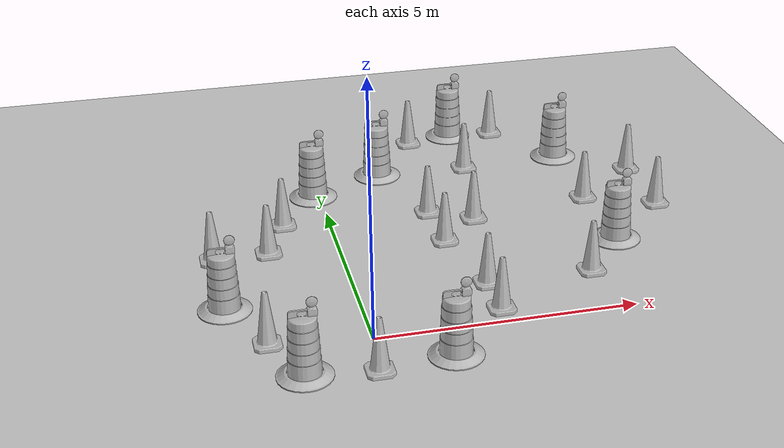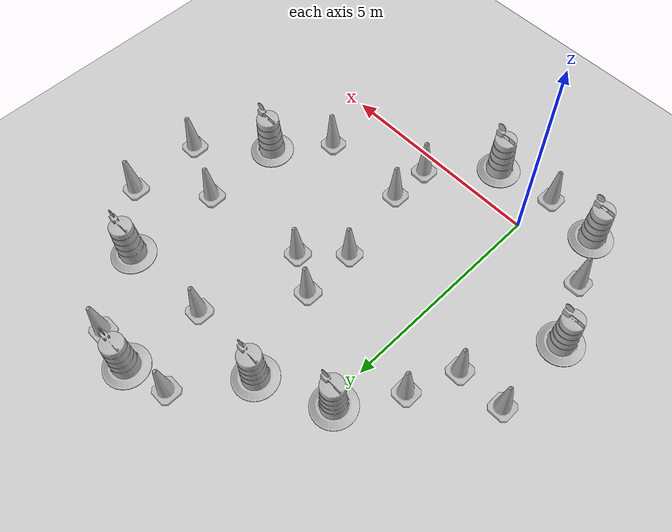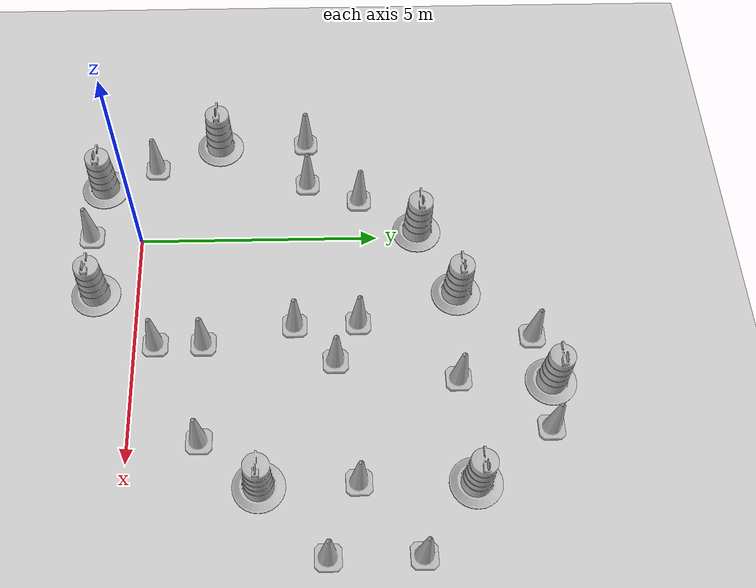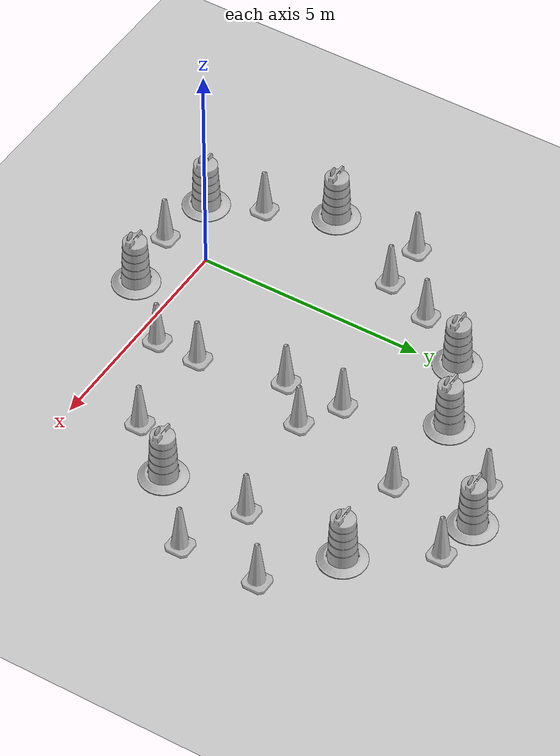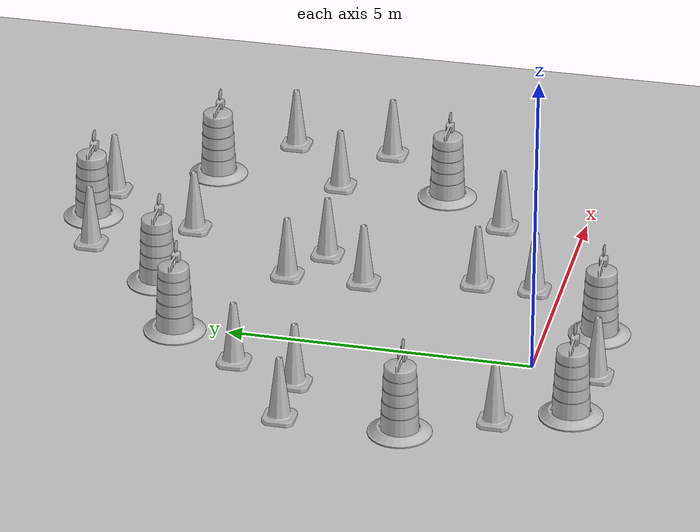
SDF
<sdf version="1.7">
 <world name="default">
  <light name="sun" type="directional">
   <pose>0 0 10 0 -0 0</pose>
   <diffuse>0.8 0.8 0.8 1</diffuse>
   <specular>0.2 0.2 0.2 1</specular>
   <attenuation>
    <range>1000</range>
    <constant>0.9</constant>
    <linear>0.01</linear>
    <quadratic>0.001</quadratic>
   </attenuation>
   <direction>-0.5 0.1 -0.9</direction>
   <spot><inner_angle>0</inner_angle><outer_angle>0</outer_angle><falloff>0</falloff></spot>
  </light>
  <model name="ground_plane">
   <static>1</static>
   <link name="link">
    <collision name="collision">
     <geometry><plane><normal>0 0 1</normal><size>100 100</size></plane></geometry>
     <surface>
      <contact><collide_bitmask>65535</collide_bitmask></contact>
      <friction><ode><mu>100</mu><mu2>50</mu2></ode></friction>
     </surface>
    </collision>
    <visual name="visual">
     <cast_shadows>0</cast_shadows>
     <geometry><plane><normal>0 0 1</normal><size>100 100</size></plane></geometry>
     <material>
      <script><uri>file://media/materials/scripts/gazebo.material</uri><name>Gazebo/Grey</name></script>
     </material>
    </visual>
   </link>
  </model>
  <gravity>0 0 -9.8</gravity>
  <magnetic_field>6e-06 2.3e-05 -4.2e-05</magnetic_field>
  <atmosphere type="adiabatic"/>
  <physics type="ode">
   <max_step_size>0.001</max_step_size>
   <real_time_factor>1</real_time_factor>
   <real_time_update_rate>1000</real_time_update_rate>
  </physics>
  <scene><ambient>0.4 0.4 0.4 1</ambient><background>0.7 0.7 0.7 1</background><shadows>1</shadows></scene>
  <spherical_coordinates>
   <surface_model>EARTH_WGS84</surface_model>
   <latitude_deg>0</latitude_deg>
   <longitude_deg>0</longitude_deg>
   <elevation>0</elevation>
   <heading_deg>0</heading_deg>
  </spherical_coordinates>
  <model name="Construction Barrel">
   <link name="link">
    <inertial>
     <pose>0 0 0.4 0 -0 0</pose>
     <mass>500</mass>
     <inertia><ixx>51.2096</ixx><iyy>51.2096</iyy><izz>25</izz><ixy>0</ixy><ixz>0</ixz><iyz>0</iyz></inertia>
    </inertial>
    <collision name="collision">
     <geometry><mesh><uri>model://construction_barrel/meshes/construction_barrel.dae</uri></mesh></geometry>
    </collision>
    <visual name="visual">
     <geometry><mesh><uri>model://construction_barrel/meshes/construction_barrel.dae</uri></mesh></geometry>
    </visual>
   </link>
   <pose>1.40915 6.57378 -1e-06 1e-06 -9e-06 -4.3e-05</pose>
  </model>
  <model name="Construction Barrel_0">
   <link name="link">
    <inertial>
     <pose>0 0 0.4 0 -0 0</pose>
     <mass>500</mass>
     <inertia><ixx>51.2096</ixx><iyy>51.2096</iyy><izz>25</izz><ixy>0</ixy><ixz>0</ixz><iyz>0</iyz></inertia>
    </inertial>
    <collision name="collision">
     <geometry><mesh><uri>model://construction_barrel/meshes/construction_barrel.dae</uri></mesh></geometry>
    </collision>
    <visual name="visual">
     <geometry><mesh><uri>model://construction_barrel/meshes/construction_barrel.dae</uri></mesh></geometry>
    </visual>
   </link>
   <pose>5.49451 6.60607 -1e-06 1e-06 -9e-06 -4.1e-05</pose>
  </model>
  <model name="Construction Cone">
   <link name="link">
    <collision name="collision">
     <geometry>
      <mesh><scale>10 10 10</scale><uri>model://construction_cone/meshes/construction_cone.dae</uri></mesh>
     </geometry>
    </collision>
    <visual name="visual">
     <geometry>
      <mesh><scale>10 10 10</scale><uri>model://construction_cone/meshes/construction_cone.dae</uri></mesh>
     </geometry>
    </visual>
    <inertial>
     <inertia><ixx>1</ixx><ixy>0</ixy><ixz>0</ixz><iyy>1</iyy><iyz>0</iyz><izz>1</izz></inertia>
     <mass>1</mass>
    </inertial>
   </link>
   <pose>5.458 4.41341 -1e-05 -1e-06 0 0</pose>
  </model>
  <model name="Construction Cone_0">
   <link name="link">
    <collision name="collision">
     <geometry>
      <mesh><scale>10 10 10</scale><uri>model://construction_cone/meshes/construction_cone.dae</uri></mesh>
     </geometry>
    </collision>
    <visual name="visual">
     <geometry>
      <mesh><scale>10 10 10</scale><uri>model://construction_cone/meshes/construction_cone.dae</uri></mesh>
     </geometry>
    </visual>
    <inertial>
     <inertia><ixx>1</ixx><ixy>0</ixy><ixz>0</ixz><iyy>1</iyy><iyz>0</iyz><izz>1</izz></inertia>
     <mass>1</mass>
    </inertial>
   </link>
   <pose>4.58744 1.38523 -8e-06 1e-06 -0 0</pose>
  </model>
  <model name="Construction Cone_1">
   <link name="link">
    <collision name="collision">
     <geometry>
      <mesh><scale>10 10 10</scale><uri>model://construction_cone/meshes/construction_cone.dae</uri></mesh>
     </geometry>
    </collision>
    <visual name="visual">
     <geometry>
      <mesh><scale>10 10 10</scale><uri>model://construction_cone/meshes/construction_cone.dae</uri></mesh>
     </geometry>
    </visual>
    <inertial>
     <inertia><ixx>1</ixx><ixy>0</ixy><ixz>0</ixz><iyy>1</iyy><iyz>0</iyz><izz>1</izz></inertia>
     <mass>1</mass>
    </inertial>
   </link>
   <pose>3.35666 6.45942 -0 0 -0 0</pose>
  </model>
  <model name="Construction Cone_2">
   <link name="link">
    <collision name="collision">
     <geometry>
      <mesh><scale>10 10 10</scale><uri>model://construction_cone/meshes/construction_cone.dae</uri></mesh>
     </geometry>
    </collision>
    <visual name="visual">
     <geometry>
      <mesh><scale>10 10 10</scale><uri>model://construction_cone/meshes/construction_cone.dae</uri></mesh>
     </geometry>
    </visual>
    <inertial>
     <inertia><ixx>1</ixx><ixy>0</ixy><ixz>0</ixz><iyy>1</iyy><iyz>0</iyz><izz>1</izz></inertia>
     <mass>1</mass>
    </inertial>
   </link>
   <pose>-0.951638 4.65665 -0 0 -0 0</pose>
  </model>
  <model name="Construction Barrel_1">
   <link name="link">
    <inertial>
     <pose>0 0 0.4 0 -0 0</pose>
     <mass>500</mass>
     <inertia><ixx>51.2096</ixx><iyy>51.2096</iyy><izz>25</izz><ixy>0</ixy><ixz>0</ixz><iyz>0</iyz></inertia>
    </inertial>
    <collision name="collision">
     <geometry><mesh><uri>model://construction_barrel/meshes/construction_barrel.dae</uri></mesh></geometry>
    </collision>
    <visual name="visual">
     <geometry><mesh><uri>model://construction_barrel/meshes/construction_barrel.dae</uri></mesh></geometry>
    </visual>
   </link>
   <pose>1.3006 -0.863481 -1e-06 5e-06 -3e-06 -0.000551</pose>
  </model>
  <model name="Construction Barrel_2">
   <link name="link">
    <inertial>
     <pose>0 0 0.4 0 -0 0</pose>
     <mass>500</mass>
     <inertia><ixx>51.2096</ixx><iyy>51.2096</iyy><izz>25</izz><ixy>0</ixy><ixz>0</ixz><iyz>0</iyz></inertia>
    </inertial>
    <collision name="collision">
     <geometry><mesh><uri>model://construction_barrel/meshes/construction_barrel.dae</uri></mesh></geometry>
    </collision>
    <visual name="visual">
     <geometry><mesh><uri>model://construction_barrel/meshes/construction_barrel.dae</uri></mesh></geometry>
    </visual>
   </link>
   <pose>-2.47115 1.61275 -1e-06 1e-06 -9e-06 -3.5e-05</pose>
  </model>
  <model name="Construction Cone_3">
   <link name="link">
    <collision name="collision">
     <geometry>
      <mesh><scale>10 10 10</scale><uri>model://construction_cone/meshes/construction_cone.dae</uri></mesh>
     </geometry>
    </collision>
    <visual name="visual">
     <geometry>
      <mesh><scale>10 10 10</scale><uri>model://construction_cone/meshes/construction_cone.dae</uri></mesh>
     </geometry>
    </visual>
    <inertial>
     <inertia><ixx>1</ixx><ixy>0</ixy><ixz>0</ixz><iyy>1</iyy><iyz>0</iyz><izz>1</izz></inertia>
     <mass>1</mass>
    </inertial>
   </link>
   <pose>-1.86584 0.240349 -9e-06 -1e-06 -0 -0</pose>
  </model>
  <model name="Construction Barrel_3">
   <link name="link">
    <inertial>
     <pose>0 0 0.4 0 -0 0</pose>
     <mass>500</mass>
     <inertia><ixx>51.2096</ixx><iyy>51.2096</iyy><izz>25</izz><ixy>0</ixy><ixz>0</ixz><iyz>0</iyz></inertia>
    </inertial>
    <collision name="collision">
     <geometry><mesh><uri>model://construction_barrel/meshes/construction_barrel.dae</uri></mesh></geometry>
    </collision>
    <visual name="visual">
     <geometry><mesh><uri>model://construction_barrel/meshes/construction_barrel.dae</uri></mesh></geometry>
    </visual>
   </link>
   <pose>5.50364 2.53508 -1e-06 4e-06 -2e-06 -2.9e-05</pose>
  </model>
  <model name="Construction Cone_4">
   <link name="link">
    <collision name="collision">
     <geometry>
      <mesh><scale>10 10 10</scale><uri>model://construction_cone/meshes/construction_cone.dae</uri></mesh>
     </geometry>
    </collision>
    <visual name="visual">
     <geometry>
      <mesh><scale>10 10 10</scale><uri>model://construction_cone/meshes/construction_cone.dae</uri></mesh>
     </geometry>
    </visual>
    <inertial>
     <inertia><ixx>1</ixx><ixy>0</ixy><ixz>0</ixz><iyy>1</iyy><iyz>0</iyz><izz>1</izz></inertia>
     <mass>1</mass>
    </inertial>
   </link>
   <pose>2.4986 1.39896 -0 -0 -0 -0</pose>
  </model>
  <model name="Construction Cone_5">
   <link name="link">
    <collision name="collision">
     <geometry>
      <mesh><scale>10 10 10</scale><uri>model://construction_cone/meshes/construction_cone.dae</uri></mesh>
     </geometry>
    </collision>
    <visual name="visual">
     <geometry>
      <mesh><scale>10 10 10</scale><uri>model://construction_cone/meshes/construction_cone.dae</uri></mesh>
     </geometry>
    </visual>
    <inertial>
     <inertia><ixx>1</ixx><ixy>0</ixy><ixz>0</ixz><iyy>1</iyy><iyz>0</iyz><izz>1</izz></inertia>
     <mass>1</mass>
    </inertial>
   </link>
   <pose>-2.50221 3.52082 -0 0 -0 0</pose>
  </model>
  <model name="Construction Barrel_4">
   <link name="link">
    <inertial>
     <pose>0 0 0.4 0 -0 0</pose>
     <mass>500</mass>
     <inertia><ixx>51.2096</ixx><iyy>51.2096</iyy><izz>25</izz><ixy>0</ixy><ixz>0</ixz><iyz>0</iyz></inertia>
    </inertial>
    <collision name="collision">
     <geometry><mesh><uri>model://construction_barrel/meshes/construction_barrel.dae</uri></mesh></geometry>
    </collision>
    <visual name="visual">
     <geometry><mesh><uri>model://construction_barrel/meshes/construction_barrel.dae</uri></mesh></geometry>
    </visual>
   </link>
   <pose>-0.134183 5.86094 -2e-06 -7e-06 -4e-06 -2.6e-05</pose>
  </model>
  <model name="Construction Cone_6">
   <link name="link">
    <collision name="collision">
     <geometry>
      <mesh><scale>10 10 10</scale><uri>model://construction_cone/meshes/construction_cone.dae</uri></mesh>
     </geometry>
    </collision>
    <visual name="visual">
     <geometry>
      <mesh><scale>10 10 10</scale><uri>model://construction_cone/meshes/construction_cone.dae</uri></mesh>
     </geometry>
    </visual>
    <inertial>
     <inertia><ixx>1</ixx><ixy>0</ixy><ixz>0</ixz><iyy>1</iyy><iyz>0</iyz><izz>1</izz></inertia>
     <mass>1</mass>
    </inertial>
   </link>
   <pose>-1.40242 3.54881 -8e-06 -6e-06 -0 -0</pose>
  </model>
  <model name="Construction Cone_7">
   <link name="link">
    <collision name="collision">
     <geometry>
      <mesh><scale>10 10 10</scale><uri>model://construction_cone/meshes/construction_cone.dae</uri></mesh>
     </geometry>
    </collision>
    <visual name="visual">
     <geometry>
      <mesh><scale>10 10 10</scale><uri>model://construction_cone/meshes/construction_cone.dae</uri></mesh>
     </geometry>
    </visual>
    <inertial>
     <inertia><ixx>1</ixx><ixy>0</ixy><ixz>0</ixz><iyy>1</iyy><iyz>0</iyz><izz>1</izz></inertia>
     <mass>1</mass>
    </inertial>
   </link>
   <pose>2.49794 0.431597 -4e-06 4e-06 -1e-06 0</pose>
  </model>
  <model name="Construction Cone_8">
   <link name="link">
    <collision name="collision">
     <geometry>
      <mesh><scale>10 10 10</scale><uri>model://construction_cone/meshes/construction_cone.dae</uri></mesh>
     </geometry>
    </collision>
    <visual name="visual">
     <geometry>
      <mesh><scale>10 10 10</scale><uri>model://construction_cone/meshes/construction_cone.dae</uri></mesh>
     </geometry>
    </visual>
    <inertial>
     <inertia><ixx>1</ixx><ixy>0</ixy><ixz>0</ixz><iyy>1</iyy><iyz>0</iyz><izz>1</izz></inertia>
     <mass>1</mass>
    </inertial>
   </link>
   <pose>6.86172 3.80096 -6e-06 -4e-06 1e-06 0</pose>
  </model>
  <model name="Construction Cone_9">
   <link name="link">
    <collision name="collision">
     <geometry>
      <mesh><scale>10 10 10</scale><uri>model://construction_cone/meshes/construction_cone.dae</uri></mesh>
     </geometry>
    </collision>
    <visual name="visual">
     <geometry>
      <mesh><scale>10 10 10</scale><uri>model://construction_cone/meshes/construction_cone.dae</uri></mesh>
     </geometry>
    </visual>
    <inertial>
     <inertia><ixx>1</ixx><ixy>0</ixy><ixz>0</ixz><iyy>1</iyy><iyz>0</iyz><izz>1</izz></inertia>
     <mass>1</mass>
    </inertial>
   </link>
   <pose>6.85731 5.539 -0 0 -0 0</pose>
  </model>
  <model name="Construction Cone_10">
   <link name="link">
    <collision name="collision">
     <geometry>
      <mesh><scale>10 10 10</scale><uri>model://construction_cone/meshes/construction_cone.dae</uri></mesh>
     </geometry>
    </collision>
    <visual name="visual">
     <geometry>
      <mesh><scale>10 10 10</scale><uri>model://construction_cone/meshes/construction_cone.dae</uri></mesh>
     </geometry>
    </visual>
    <inertial>
     <inertia><ixx>1</ixx><ixy>0</ixy><ixz>0</ixz><iyy>1</iyy><iyz>0</iyz><izz>1</izz></inertia>
     <mass>1</mass>
    </inertial>
   </link>
   <pose>2.43612 8.02541 -8e-06 -5e-06 -0 -0</pose>
  </model>
  <model name="Construction Barrel_5">
   <link name="link">
    <inertial>
     <pose>0 0 0.4 0 -0 0</pose>
     <mass>500</mass>
     <inertia><ixx>51.2096</ixx><iyy>51.2096</iyy><izz>25</izz><ixy>0</ixy><ixz>0</ixz><iyz>0</iyz></inertia>
    </inertial>
    <collision name="collision">
     <geometry><mesh><uri>model://construction_barrel/meshes/construction_barrel.dae</uri></mesh></geometry>
    </collision>
    <visual name="visual">
     <geometry><mesh><uri>model://construction_barrel/meshes/construction_barrel.dae</uri></mesh></geometry>
    </visual>
   </link>
   <pose>3.44069 8.27908 -2e-06 -8e-06 -4e-06 -1.8e-05</pose>
  </model>
  <model name="Construction Cone_11">
   <link name="link">
    <collision name="collision">
     <geometry>
      <mesh><scale>10 10 10</scale><uri>model://construction_cone/meshes/construction_cone.dae</uri></mesh>
     </geometry>
    </collision>
    <visual name="visual">
     <geometry>
      <mesh><scale>10 10 10</scale><uri>model://construction_cone/meshes/construction_cone.dae</uri></mesh>
     </geometry>
    </visual>
    <inertial>
     <inertia><ixx>1</ixx><ixy>0</ixy><ixz>0</ixz><iyy>1</iyy><iyz>0</iyz><izz>1</izz></inertia>
     <mass>1</mass>
    </inertial>
   </link>
   <pose>4.41665 8.15947 -7e-06 -4e-06 0 0</pose>
  </model>
  <model name="Construction Cone_12">
   <link name="link">
    <collision name="collision">
     <geometry>
      <mesh><scale>10 10 10</scale><uri>model://construction_cone/meshes/construction_cone.dae</uri></mesh>
     </geometry>
    </collision>
    <visual name="visual">
     <geometry>
      <mesh><scale>10 10 10</scale><uri>model://construction_cone/meshes/construction_cone.dae</uri></mesh>
     </geometry>
    </visual>
    <inertial>
     <inertia><ixx>1</ixx><ixy>0</ixy><ixz>0</ixz><iyy>1</iyy><iyz>0</iyz><izz>1</izz></inertia>
     <mass>1</mass>
    </inertial>
   </link>
   <pose>2.1161 3.23675 -0 0 -0 0</pose>
  </model>
  <model name="Construction Cone_13">
   <link name="link">
    <collision name="collision">
     <geometry>
      <mesh><scale>10 10 10</scale><uri>model://construction_cone/meshes/construction_cone.dae</uri></mesh>
     </geometry>
    </collision>
    <visual name="visual">
     <geometry>
      <mesh><scale>10 10 10</scale><uri>model://construction_cone/meshes/construction_cone.dae</uri></mesh>
     </geometry>
    </visual>
    <inertial>
     <inertia><ixx>1</ixx><ixy>0</ixy><ixz>0</ixz><iyy>1</iyy><iyz>0</iyz><izz>1</izz></inertia>
     <mass>1</mass>
    </inertial>
   </link>
   <pose>2.07423 4.52742 -0 0 -0 0</pose>
  </model>
  <model name="Construction Cone_14">
   <link name="link">
    <collision name="collision">
     <geometry>
      <mesh><scale>10 10 10</scale><uri>model://construction_cone/meshes/construction_cone.dae</uri></mesh>
     </geometry>
    </collision>
    <visual name="visual">
     <geometry>
      <mesh><scale>10 10 10</scale><uri>model://construction_cone/meshes/construction_cone.dae</uri></mesh>
     </geometry>
    </visual>
    <inertial>
     <inertia><ixx>1</ixx><ixy>0</ixy><ixz>0</ixz><iyy>1</iyy><iyz>0</iyz><izz>1</izz></inertia>
     <mass>1</mass>
    </inertial>
   </link>
   <pose>2.93196 4.04312 -0 0 -1e-06 0</pose>
  </model>
  <model name="Construction Barrel_6">
   <link name="link">
    <inertial>
     <pose>0 0 0.4 0 -0 0</pose>
     <mass>500</mass>
     <inertia><ixx>51.2096</ixx><iyy>51.2096</iyy><izz>25</izz><ixy>0</ixy><ixz>0</ixz><iyz>0</iyz></inertia>
    </inertial>
    <collision name="collision">
     <geometry><mesh><uri>model://construction_barrel/meshes/construction_barrel.dae</uri></mesh></geometry>
    </collision>
    <visual name="visual">
     <geometry><mesh><uri>model://construction_barrel/meshes/construction_barrel.dae</uri></mesh></geometry>
    </visual>
   </link>
   <pose>-1.37063 -0.877889 0 0 0 -3e-06</pose>
  </model>
  <model name="Construction Cone_15">
   <link name="link">
    <collision name="collision">
     <geometry>
      <mesh><scale>10 10 10</scale><uri>model://construction_cone/meshes/construction_cone.dae</uri></mesh>
     </geometry>
    </collision>
    <visual name="visual">
     <geometry>
      <mesh><scale>10 10 10</scale><uri>model://construction_cone/meshes/construction_cone.dae</uri></mesh>
     </geometry>
    </visual>
    <inertial>
     <inertia><ixx>1</ixx><ixy>0</ixy><ixz>0</ixz><iyy>1</iyy><iyz>0</iyz><izz>1</izz></inertia>
     <mass>1</mass>
    </inertial>
   </link>
   <pose>-0.101404 -1.06095 -0 0 -1e-06 0</pose>
  </model>
 </world>
</sdf>
